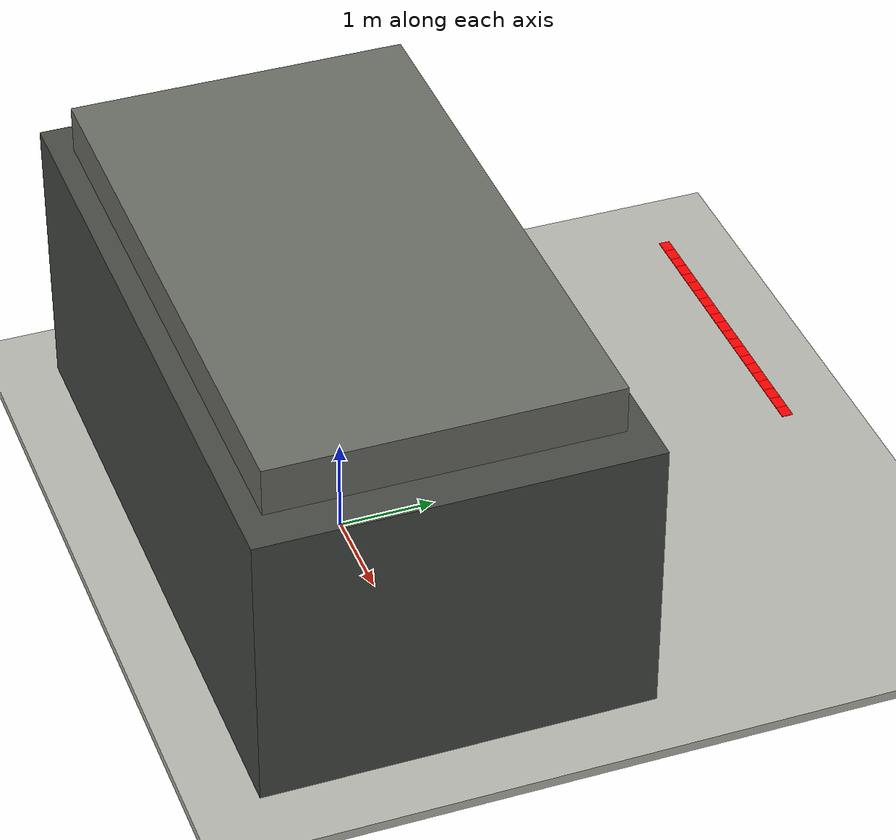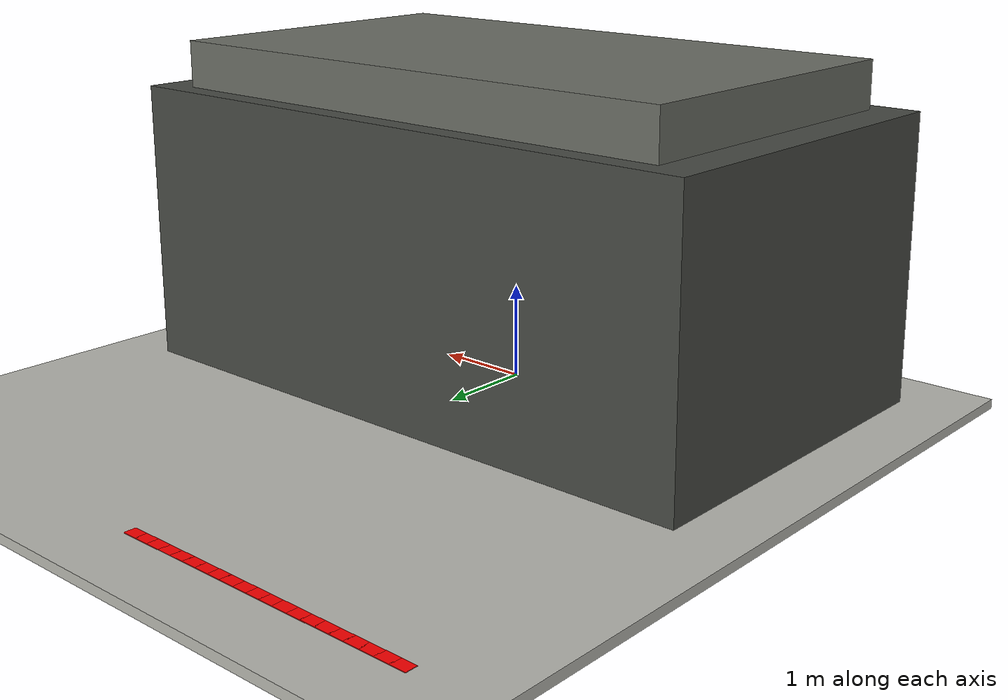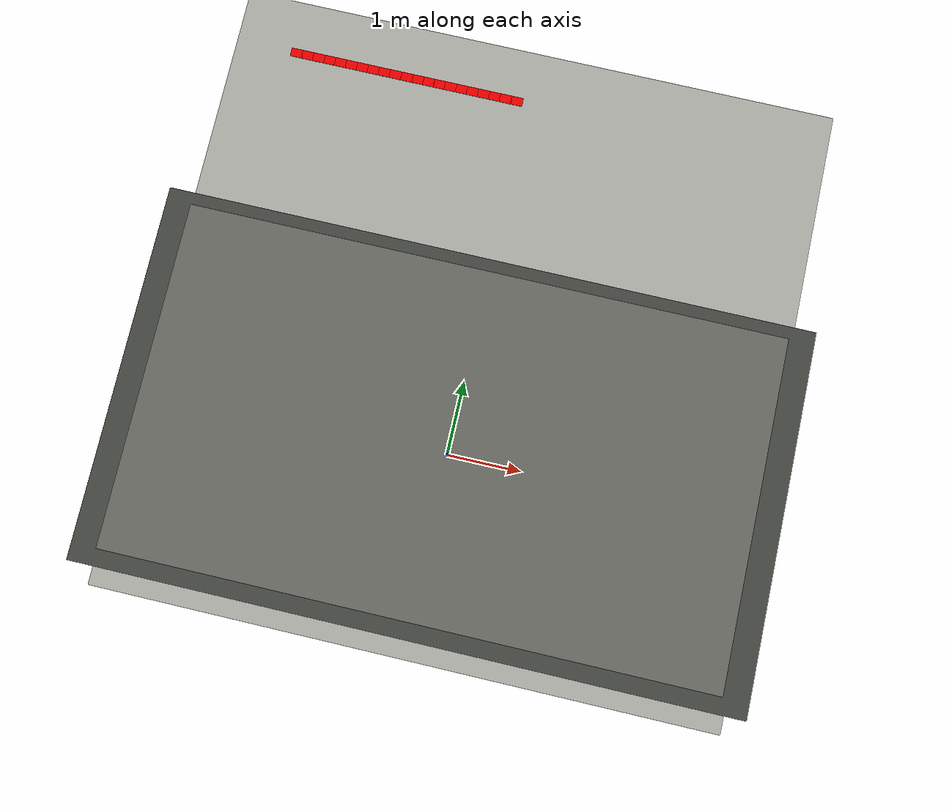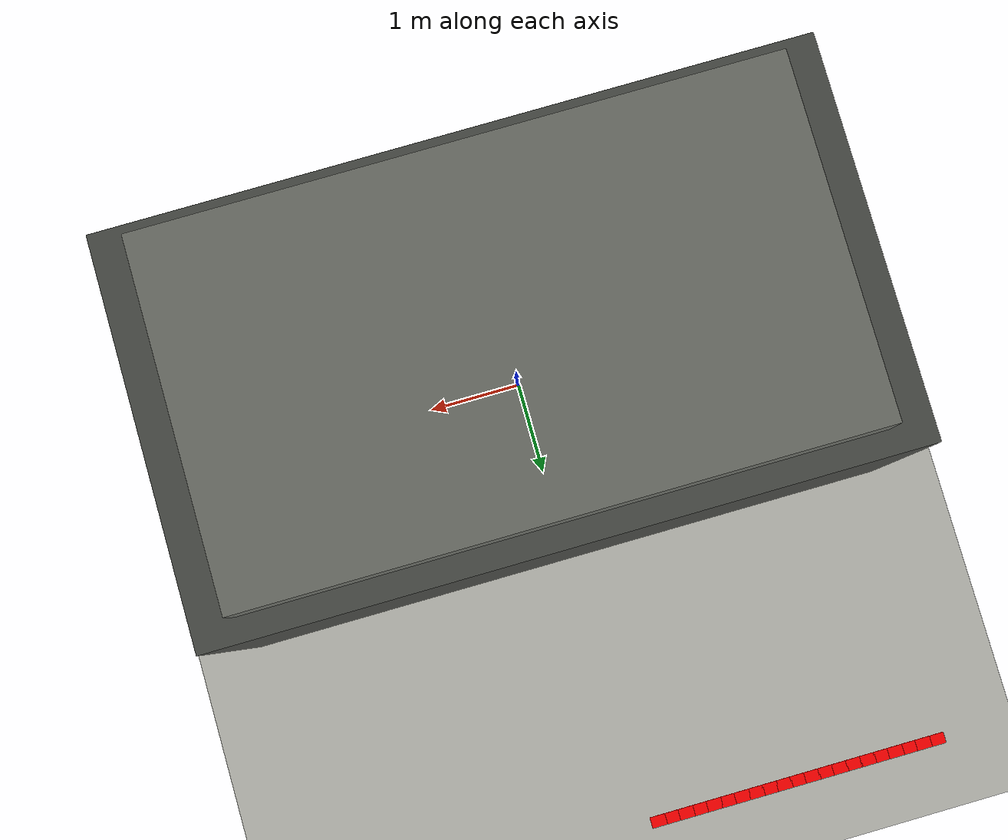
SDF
<sdf version="1.6">
 <world name="transformer_world">
  <model name="factory_floor">
   <static>true</static>
   <link name="link">
    <collision name="collision">
     <pose>0 0 -0.05 0 0 0</pose>
     <geometry><box><size>24.0 20.0 0.10</size></box></geometry>
    </collision>
    <visual name="visual">
     <pose>0 0 -0.05 0 0 0</pose>
     <geometry><box><size>24.0 20.0 0.10</size></box></geometry>
     <material><ambient>0.72 0.72 0.69 1</ambient><diffuse>0.72 0.72 0.69 1</diffuse></material>
    </visual>
   </link>
  </model>
  <model name="transformer_main_body">
   <static>true</static>
   <pose>0.0 0.0 1.512 0 0 0</pose>
   <link name="link">
    <collision name="collision"><geometry><box><size>7.0 4.0 3.024</size></box></geometry></collision>
    <visual name="visual">
     <geometry><box><size>7.0 4.0 3.024</size></box></geometry>
     <material><ambient>0.28 0.29 0.27 1</ambient><diffuse>0.28 0.29 0.27 1</diffuse></material>
    </visual>
   </link>
  </model>
  <model name="transformer_top">
   <static>true</static>
   <pose>0.0 0.0 3.274 0 0 0</pose>
   <link name="link">
    <collision name="collision"><geometry><box><size>6.16 3.52 0.5</size></box></geometry></collision>
    <visual name="visual">
     <geometry><box><size>6.16 3.52 0.5</size></box></geometry>
     <material><ambient>0.42 0.43 0.40 1</ambient><diffuse>0.42 0.43 0.40 1</diffuse></material>
    </visual>
   </link>
  </model>
  <model name="path_top_34">
   <static>true</static>
   <pose>-0.15821 5.00000 0.00300 0 0 3.14159</pose>
   <link name="link">
    <visual name="visual">
     <cast_shadows>false</cast_shadows>
     <geometry><box><size>0.16821 0.12000 0.00600</size></box></geometry>
     <material><ambient>1 0 0 1</ambient><diffuse>1 0 0 1</diffuse><emissive>0.35 0 0 1</emissive></material>
    </visual>
   </link>
  </model>
  <model name="path_top_35">
   <static>true</static>
   <pose>-0.31642 5.00000 0.00300 0 0 3.14159</pose>
   <link name="link">
    <visual name="visual">
     <cast_shadows>false</cast_shadows>
     <geometry><box><size>0.16821 0.12000 0.00600</size></box></geometry>
     <material><ambient>1 0 0 1</ambient><diffuse>1 0 0 1</diffuse><emissive>0.35 0 0 1</emissive></material>
    </visual>
   </link>
  </model>
  <model name="path_top_36">
   <static>true</static>
   <pose>-0.47463 5.00000 0.00300 0 0 3.14159</pose>
   <link name="link">
    <visual name="visual">
     <cast_shadows>false</cast_shadows>
     <geometry><box><size>0.16821 0.12000 0.00600</size></box></geometry>
     <material><ambient>1 0 0 1</ambient><diffuse>1 0 0 1</diffuse><emissive>0.35 0 0 1</emissive></material>
    </visual>
   </link>
  </model>
  <model name="path_top_37">
   <static>true</static>
   <pose>-0.63284 5.00000 0.00300 0 0 3.14159</pose>
   <link name="link">
    <visual name="visual">
     <cast_shadows>false</cast_shadows>
     <geometry><box><size>0.16821 0.12000 0.00600</size></box></geometry>
     <material><ambient>1 0 0 1</ambient><diffuse>1 0 0 1</diffuse><emissive>0.35 0 0 1</emissive></material>
    </visual>
   </link>
  </model>
  <model name="path_top_38">
   <static>true</static>
   <pose>-0.79104 5.00000 0.00300 0 0 3.14159</pose>
   <link name="link">
    <visual name="visual">
     <cast_shadows>false</cast_shadows>
     <geometry><box><size>0.16821 0.12000 0.00600</size></box></geometry>
     <material><ambient>1 0 0 1</ambient><diffuse>1 0 0 1</diffuse><emissive>0.35 0 0 1</emissive></material>
    </visual>
   </link>
  </model>
  <model name="path_top_39">
   <static>true</static>
   <pose>-0.94925 5.00000 0.00300 0 0 3.14159</pose>
   <link name="link">
    <visual name="visual">
     <cast_shadows>false</cast_shadows>
     <geometry><box><size>0.16821 0.12000 0.00600</size></box></geometry>
     <material><ambient>1 0 0 1</ambient><diffuse>1 0 0 1</diffuse><emissive>0.35 0 0 1</emissive></material>
    </visual>
   </link>
  </model>
  <model name="path_top_40">
   <static>true</static>
   <pose>-1.10746 5.00000 0.00300 0 0 3.14159</pose>
   <link name="link">
    <visual name="visual">
     <cast_shadows>false</cast_shadows>
     <geometry><box><size>0.16821 0.12000 0.00600</size></box></geometry>
     <material><ambient>1 0 0 1</ambient><diffuse>1 0 0 1</diffuse><emissive>0.35 0 0 1</emissive></material>
    </visual>
   </link>
  </model>
  <model name="path_top_41">
   <static>true</static>
   <pose>-1.26567 5.00000 0.00300 0 0 3.14159</pose>
   <link name="link">
    <visual name="visual">
     <cast_shadows>false</cast_shadows>
     <geometry><box><size>0.16821 0.12000 0.00600</size></box></geometry>
     <material><ambient>1 0 0 1</ambient><diffuse>1 0 0 1</diffuse><emissive>0.35 0 0 1</emissive></material>
    </visual>
   </link>
  </model>
  <model name="path_top_42">
   <static>true</static>
   <pose>-1.42388 5.00000 0.00300 0 0 3.14159</pose>
   <link name="link">
    <visual name="visual">
     <cast_shadows>false</cast_shadows>
     <geometry><box><size>0.16821 0.12000 0.00600</size></box></geometry>
     <material><ambient>1 0 0 1</ambient><diffuse>1 0 0 1</diffuse><emissive>0.35 0 0 1</emissive></material>
    </visual>
   </link>
  </model>
  <model name="path_top_43">
   <static>true</static>
   <pose>-1.58209 5.00000 0.00300 0 0 3.14159</pose>
   <link name="link">
    <visual name="visual">
     <cast_shadows>false</cast_shadows>
     <geometry><box><size>0.16821 0.12000 0.00600</size></box></geometry>
     <material><ambient>1 0 0 1</ambient><diffuse>1 0 0 1</diffuse><emissive>0.35 0 0 1</emissive></material>
    </visual>
   </link>
  </model>
  <model name="path_top_44">
   <static>true</static>
   <pose>-1.74030 5.00000 0.00300 0 0 3.14159</pose>
   <link name="link">
    <visual name="visual">
     <cast_shadows>false</cast_shadows>
     <geometry><box><size>0.16821 0.12000 0.00600</size></box></geometry>
     <material><ambient>1 0 0 1</ambient><diffuse>1 0 0 1</diffuse><emissive>0.35 0 0 1</emissive></material>
    </visual>
   </link>
  </model>
  <model name="path_top_45">
   <static>true</static>
   <pose>-1.89851 5.00000 0.00300 0 0 3.14159</pose>
   <link name="link">
    <visual name="visual">
     <cast_shadows>false</cast_shadows>
     <geometry><box><size>0.16821 0.12000 0.00600</size></box></geometry>
     <material><ambient>1 0 0 1</ambient><diffuse>1 0 0 1</diffuse><emissive>0.35 0 0 1</emissive></material>
    </visual>
   </link>
  </model>
  <model name="path_top_46">
   <static>true</static>
   <pose>-2.05672 5.00000 0.00300 0 0 3.14159</pose>
   <link name="link">
    <visual name="visual">
     <cast_shadows>false</cast_shadows>
     <geometry><box><size>0.16821 0.12000 0.00600</size></box></geometry>
     <material><ambient>1 0 0 1</ambient><diffuse>1 0 0 1</diffuse><emissive>0.35 0 0 1</emissive></material>
    </visual>
   </link>
  </model>
  <model name="path_top_47">
   <static>true</static>
   <pose>-2.21493 5.00000 0.00300 0 0 3.14159</pose>
   <link name="link">
    <visual name="visual">
     <cast_shadows>false</cast_shadows>
     <geometry><box><size>0.16821 0.12000 0.00600</size></box></geometry>
     <material><ambient>1 0 0 1</ambient><diffuse>1 0 0 1</diffuse><emissive>0.35 0 0 1</emissive></material>
    </visual>
   </link>
  </model>
  <model name="path_top_48">
   <static>true</static>
   <pose>-2.37313 5.00000 0.00300 0 0 3.14159</pose>
   <link name="link">
    <visual name="visual">
     <cast_shadows>false</cast_shadows>
     <geometry><box><size>0.16821 0.12000 0.00600</size></box></geometry>
     <material><ambient>1 0 0 1</ambient><diffuse>1 0 0 1</diffuse><emissive>0.35 0 0 1</emissive></material>
    </visual>
   </link>
  </model>
  <model name="path_top_49">
   <static>true</static>
   <pose>-2.53134 5.00000 0.00300 0 0 3.14159</pose>
   <link name="link">
    <visual name="visual">
     <cast_shadows>false</cast_shadows>
     <geometry><box><size>0.16821 0.12000 0.00600</size></box></geometry>
     <material><ambient>1 0 0 1</ambient><diffuse>1 0 0 1</diffuse><emissive>0.35 0 0 1</emissive></material>
    </visual>
   </link>
  </model>
  <model name="path_top_50">
   <static>true</static>
   <pose>-2.68955 5.00000 0.00300 0 0 3.14159</pose>
   <link name="link">
    <visual name="visual">
     <cast_shadows>false</cast_shadows>
     <geometry><box><size>0.16821 0.12000 0.00600</size></box></geometry>
     <material><ambient>1 0 0 1</ambient><diffuse>1 0 0 1</diffuse><emissive>0.35 0 0 1</emissive></material>
    </visual>
   </link>
  </model>
  <model name="path_top_51">
   <static>true</static>
   <pose>-2.84776 5.00000 0.00300 0 0 3.14159</pose>
   <link name="link">
    <visual name="visual">
     <cast_shadows>false</cast_shadows>
     <geometry><box><size>0.16821 0.12000 0.00600</size></box></geometry>
     <material><ambient>1 0 0 1</ambient><diffuse>1 0 0 1</diffuse><emissive>0.35 0 0 1</emissive></material>
    </visual>
   </link>
  </model>
  <model name="path_top_52">
   <static>true</static>
   <pose>-3.00597 5.00000 0.00300 0 0 3.14159</pose>
   <link name="link">
    <visual name="visual">
     <cast_shadows>false</cast_shadows>
     <geometry><box><size>0.16821 0.12000 0.00600</size></box></geometry>
     <material><ambient>1 0 0 1</ambient><diffuse>1 0 0 1</diffuse><emissive>0.35 0 0 1</emissive></material>
    </visual>
   </link>
  </model>
  <model name="path_top_53">
   <static>true</static>
   <pose>-3.16418 5.00000 0.00300 0 0 3.14159</pose>
   <link name="link">
    <visual name="visual">
     <cast_shadows>false</cast_shadows>
     <geometry><box><size>0.16821 0.12000 0.00600</size></box></geometry>
     <material><ambient>1 0 0 1</ambient><diffuse>1 0 0 1</diffuse><emissive>0.35 0 0 1</emissive></material>
    </visual>
   </link>
  </model>
  <model name="path_top_54">
   <static>true</static>
   <pose>-3.32239 5.00000 0.00300 0 0 3.14159</pose>
   <link name="link">
    <visual name="visual">
     <cast_shadows>false</cast_shadows>
     <geometry><box><size>0.16821 0.12000 0.00600</size></box></geometry>
     <material><ambient>1 0 0 1</ambient><diffuse>1 0 0 1</diffuse><emissive>0.35 0 0 1</emissive></material>
    </visual>
   </link>
  </model>
 </world>
</sdf>
